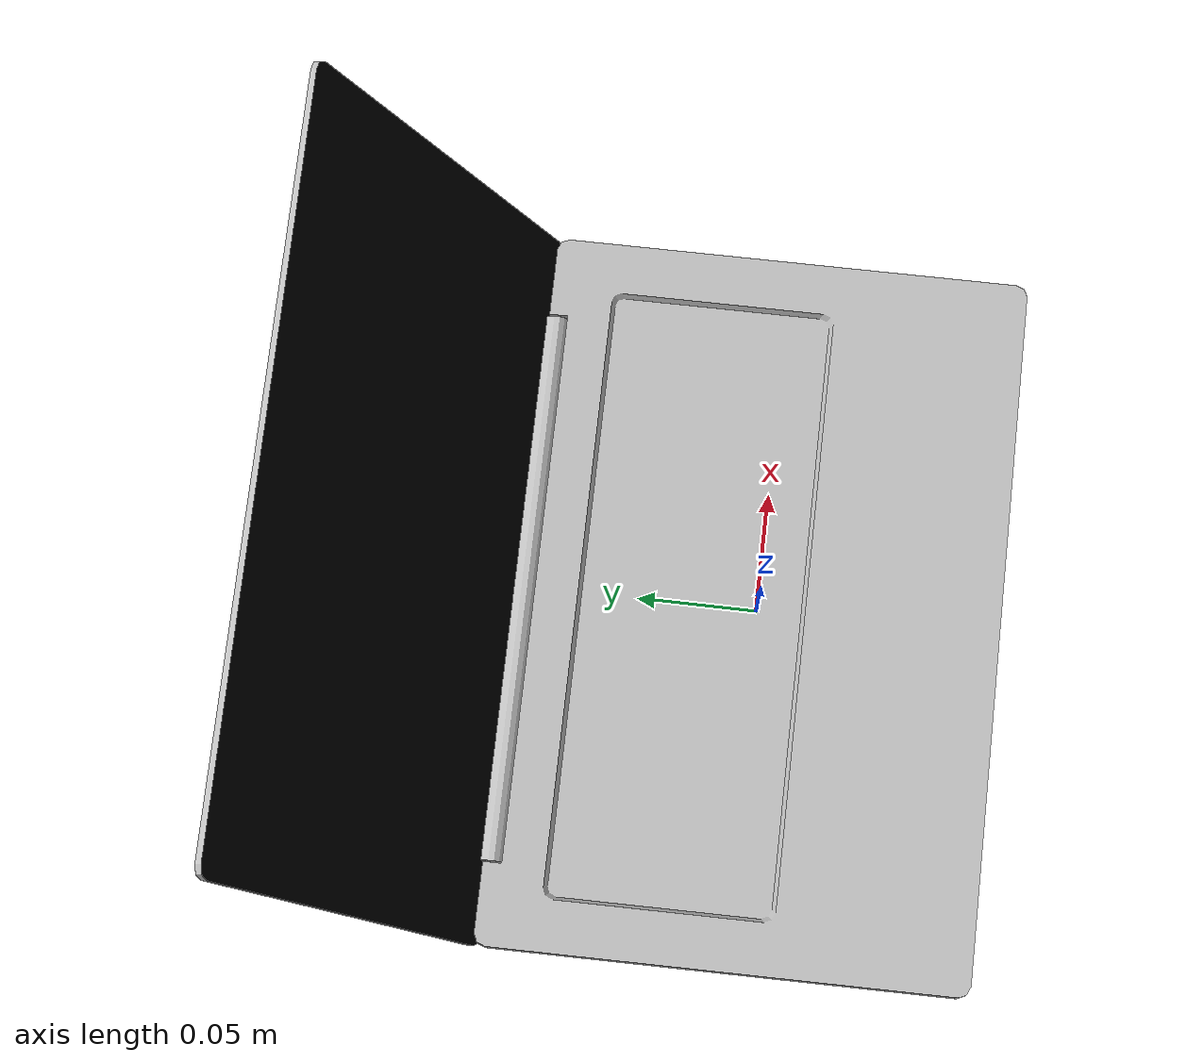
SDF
<?xml version='1.0'?>
<sdf version="1.4">
	<model name="laptop">
		<static>1</static>
		<link name="link">
			<visual name="mesh">
				<geometry>
					<mesh>
						<uri>model://meshes/laptop.dae</uri>
					</mesh>
				</geometry>
			</visual>
			<collision name="collider">
				<pose>0 0 0 0 0 0</pose>
				<geometry>
					<mesh>
						<uri>model://meshes/laptop_collision.stl</uri>
					</mesh>
				</geometry>
			</collision>
		</link>
	</model>
</sdf>
